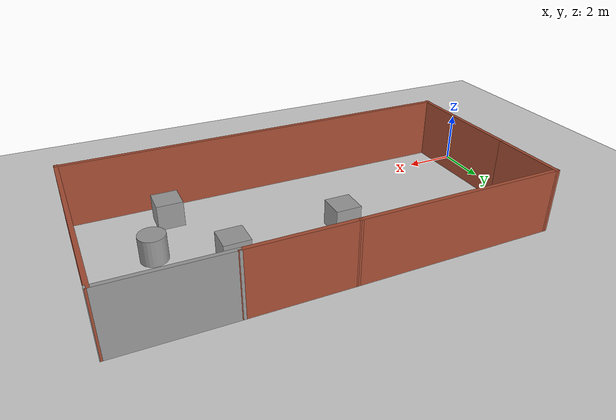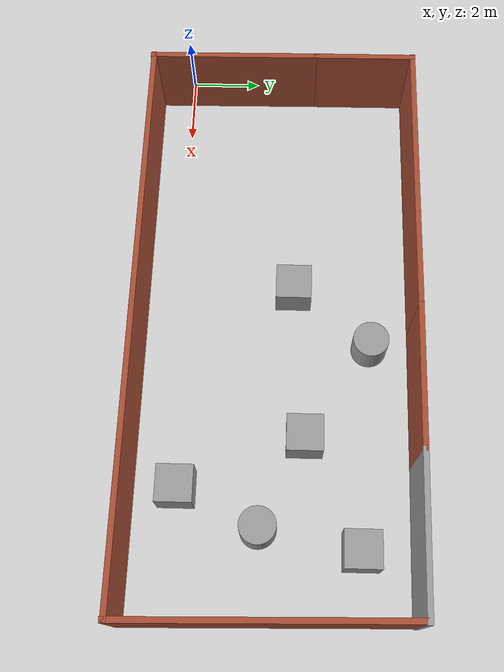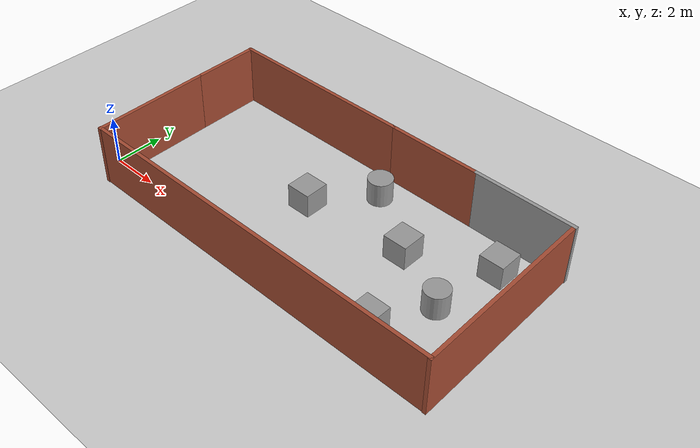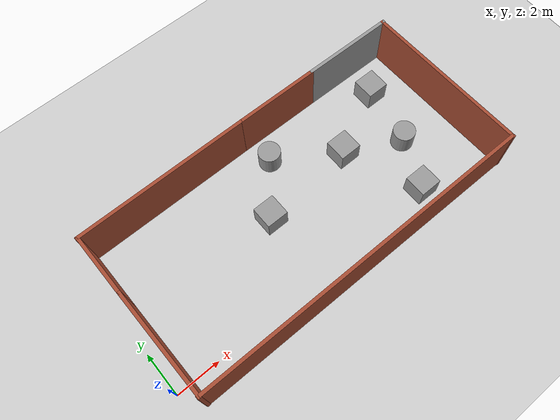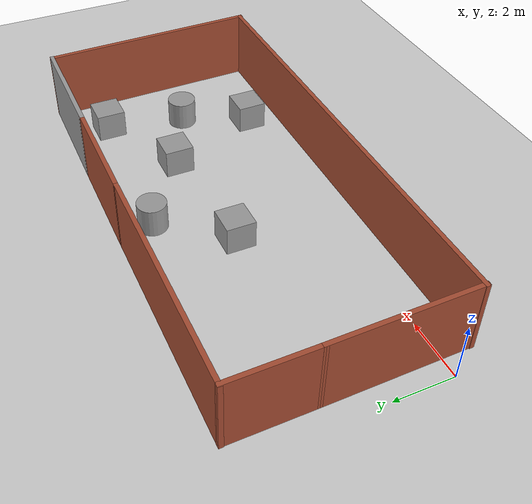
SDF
<sdf version="1.7">
 <world name="default">
  <light name="sun" type="directional">
   <pose>0 0 10 0 -0 0</pose>
   <diffuse>0.8 0.8 0.8 1</diffuse>
   <specular>0.2 0.2 0.2 1</specular>
   <attenuation>
    <range>1000</range>
    <constant>0.9</constant>
    <linear>0.01</linear>
    <quadratic>0.001</quadratic>
   </attenuation>
   <direction>-0.5 0.1 -0.9</direction>
   <spot><inner_angle>0</inner_angle><outer_angle>0</outer_angle><falloff>0</falloff></spot>
  </light>
  <model name="ground_plane">
   <static>1</static>
   <link name="link">
    <collision name="collision">
     <geometry><plane><normal>0 0 1</normal><size>100 100</size></plane></geometry>
     <surface><friction><ode><mu>100</mu><mu2>50</mu2></ode></friction></surface>
    </collision>
    <visual name="visual">
     <cast_shadows>0</cast_shadows>
     <geometry><plane><normal>0 0 1</normal><size>100 100</size></plane></geometry>
     <material>
      <script><uri>file://media/materials/scripts/gazebo.material</uri><name>Gazebo/Grey</name></script>
     </material>
    </visual>
   </link>
  </model>
  <gravity>0 0 -9.8</gravity>
  <magnetic_field>6e-06 2.3e-05 -4.2e-05</magnetic_field>
  <atmosphere type="adiabatic"/>
  <physics type="ode">
   <max_step_size>0.001</max_step_size>
   <real_time_factor>1</real_time_factor>
   <real_time_update_rate>1000</real_time_update_rate>
  </physics>
  <scene><ambient>0.4 0.4 0.4 1</ambient><background>0.7 0.7 0.7 1</background><shadows>1</shadows></scene>
  <audio><device>default</device></audio>
  <spherical_coordinates>
   <surface_model>EARTH_WGS84</surface_model>
   <latitude_deg>0</latitude_deg>
   <longitude_deg>0</longitude_deg>
   <elevation>0</elevation>
   <heading_deg>0</heading_deg>
  </spherical_coordinates>
  <model name="unit_box">
   <pose>11.637 3.65047 0.499995 -1e-05 0 0</pose>
   <link name="link">
    <inertial>
     <mass>1</mass>
     <inertia>
      <ixx>0.166667</ixx>
      <ixy>0</ixy>
      <ixz>0</ixz>
      <iyy>0.166667</iyy>
      <iyz>0</iyz>
      <izz>0.166667</izz>
     </inertia>
    </inertial>
    <collision name="collision"><geometry><box><size>1 1 1</size></box></geometry></collision>
    <visual name="visual">
     <geometry><box><size>1 1 1</size></box></geometry>
     <material>
      <script><name>Gazebo/Grey</name><uri>file://media/materials/scripts/gazebo.material</uri></script>
     </material>
    </visual>
   </link>
  </model>
  <model name="unit_box_clone">
   <pose>13.073 0.233481 0.499995 0 1e-05 0</pose>
   <link name="link">
    <inertial>
     <mass>1</mass>
     <inertia>
      <ixx>0.166667</ixx>
      <ixy>0</ixy>
      <ixz>0</ixz>
      <iyy>0.166667</iyy>
      <iyz>0</iyz>
      <izz>0.166667</izz>
     </inertia>
    </inertial>
    <collision name="collision"><geometry><box><size>1 1 1</size></box></geometry></collision>
    <visual name="visual">
     <geometry><box><size>1 1 1</size></box></geometry>
     <material>
      <script><name>Gazebo/Grey</name><uri>file://media/materials/scripts/gazebo.material</uri></script>
     </material>
    </visual>
   </link>
  </model>
  <model name="unit_box_clone_0">
   <pose>7.27341 3.27563 0.499995 0 1e-05 0</pose>
   <link name="link">
    <inertial>
     <mass>1</mass>
     <inertia>
      <ixx>0.166667</ixx>
      <ixy>0</ixy>
      <ixz>0</ixz>
      <iyy>0.166667</iyy>
      <iyz>0</iyz>
      <izz>0.166667</izz>
     </inertia>
    </inertial>
    <collision name="collision"><geometry><box><size>1 1 1</size></box></geometry></collision>
    <visual name="visual">
     <geometry><box><size>1 1 1</size></box></geometry>
     <material>
      <script><name>Gazebo/Grey</name><uri>file://media/materials/scripts/gazebo.material</uri></script>
     </material>
    </visual>
   </link>
  </model>
  <model name="unit_cylinder">
   <pose>8.96456 5.44749 0.499993 -3e-06 -3e-06 0</pose>
   <link name="link">
    <inertial>
     <mass>1</mass>
     <inertia><ixx>0.145833</ixx><ixy>0</ixy><ixz>0</ixz><iyy>0.145833</iyy><iyz>0</iyz><izz>0.125</izz></inertia>
    </inertial>
    <collision name="collision">
     <geometry><cylinder><radius>0.5</radius><length>1</length></cylinder></geometry>
    </collision>
    <visual name="visual">
     <geometry><cylinder><radius>0.5</radius><length>1</length></cylinder></geometry>
     <material>
      <script><name>Gazebo/Grey</name><uri>file://media/materials/scripts/gazebo.material</uri></script>
     </material>
    </visual>
   </link>
  </model>
  <model name="test_model">
   <pose>8.60024 2.79088 0 0 -0 0</pose>
   <link name="Wall_2">
    <collision name="Wall_2_Collision">
     <geometry><box><size>4.97731 0.15 2.5</size></box></geometry>
     <pose>0 0 1.25 0 -0 0</pose>
    </collision>
    <visual name="Wall_2_Visual">
     <pose>0 0 1.25 0 -0 0</pose>
     <geometry><box><size>4.97731 0.15 2.5</size></box></geometry>
     <material>
      <script><uri>file://media/materials/scripts/gazebo.material</uri><name>Gazebo/Bricks</name></script>
      <ambient>1 1 1 1</ambient>
     </material>
     <meta><layer>0</layer></meta>
    </visual>
    <pose>-7.89686 -1.38431 0 0 -0 -1.5583</pose>
   </link>
   <link name="Wall_3">
    <collision name="Wall_3_Collision">
     <geometry><box><size>15.9825 0.15 2.5</size></box></geometry>
     <pose>0 0 1.25 0 -0 0</pose>
    </collision>
    <visual name="Wall_3_Visual">
     <pose>0 0 1.25 0 -0 0</pose>
     <geometry><box><size>15.9825 0.15 2.5</size></box></geometry>
     <material>
      <script><uri>file://media/materials/scripts/gazebo.material</uri><name>Gazebo/Bricks</name></script>
      <ambient>1 1 1 1</ambient>
     </material>
     <meta><layer>0</layer></meta>
    </visual>
    <pose>0.029437 -3.79777 0 0 -0 -0.002541</pose>
   </link>
   <link name="Wall_5">
    <collision name="Wall_5_Collision">
     <geometry><box><size>2.95985 0.15 2.5</size></box></geometry>
     <pose>0 0 1.25 0 -0 0</pose>
    </collision>
    <visual name="Wall_5_Visual">
     <pose>0 0 1.25 0 -0 0</pose>
     <geometry><box><size>2.95985 0.15 2.5</size></box></geometry>
     <material>
      <script><uri>file://media/materials/scripts/gazebo.material</uri><name>Gazebo/Bricks</name></script>
      <ambient>1 1 1 1</ambient>
     </material>
     <meta><layer>0</layer></meta>
    </visual>
    <pose>-7.93709 2.43404 0 0 -0 1.57795</pose>
   </link>
   <link name="Wall_6">
    <collision name="Wall_6_Collision">
     <geometry><box><size>8 0.15 2.5</size></box></geometry>
     <pose>0 0 1.25 0 -0 0</pose>
    </collision>
    <visual name="Wall_6_Visual">
     <pose>0 0 1.25 0 -0 0</pose>
     <geometry><box><size>8 0.15 2.5</size></box></geometry>
     <material>
      <script><uri>file://media/materials/scripts/gazebo.material</uri><name>Gazebo/Bricks</name></script>
      <ambient>1 1 1 1</ambient>
     </material>
     <meta><layer>0</layer></meta>
    </visual>
    <pose>-4.04226 3.83893 0 0 -0 0</pose>
   </link>
   <link name="Wall_7">
    <collision name="Wall_7_Collision">
     <geometry><box><size>3.97994 0.15 2.5</size></box></geometry>
     <pose>0 0 1.25 0 -0 0</pose>
    </collision>
    <visual name="Wall_7_Visual">
     <pose>0 0 1.25 0 -0 0</pose>
     <geometry><box><size>3.97994 0.15 2.5</size></box></geometry>
     <material>
      <script><uri>file://media/materials/scripts/gazebo.material</uri><name>Gazebo/Bricks</name></script>
      <ambient>1 1 1 1</ambient>
     </material>
     <meta><layer>0</layer></meta>
    </visual>
    <pose>1.8178 3.82887 0 0 -0 -0.005252</pose>
   </link>
   <link name="Wall_8">
    <collision name="Wall_8_Collision">
     <geometry><box><size>4.23269 0.15 2.5</size></box></geometry>
     <pose>0 0 1.25 0 -0 0</pose>
    </collision>
    <visual name="Wall_8_Visual">
     <pose>0 0 1.25 0 -0 0</pose>
     <geometry><box><size>4.23269 0.15 2.5</size></box></geometry>
     <material>
      <script><uri>file://media/materials/scripts/gazebo.material</uri><name>Gazebo/Grey</name></script>
      <ambient>1 1 1 1</ambient>
     </material>
     <meta><layer>0</layer></meta>
    </visual>
    <pose>5.7941 3.7987 0 0 -0 -0.009853</pose>
   </link>
   <link name="Wall_9">
    <collision name="Wall_9_Collision">
     <geometry><box><size>7.76807 0.15 2.5</size></box></geometry>
     <pose>0 0 1.25 0 -0 0</pose>
    </collision>
    <visual name="Wall_9_Visual">
     <pose>0 0 1.25 0 -0 0</pose>
     <geometry><box><size>7.76807 0.15 2.5</size></box></geometry>
     <material>
      <script><uri>file://media/materials/scripts/gazebo.material</uri><name>Gazebo/Bricks</name></script>
      <ambient>1 1 1 1</ambient>
     </material>
     <meta><layer>0</layer></meta>
    </visual>
    <pose>7.89051 -0.029704 0 0 -0 -1.55103</pose>
   </link>
   <static>1</static>
  </model>
  <model name="unit_box_clone_1">
   <pose>14.6341 5.177 0.499995 -1e-05 0 0</pose>
   <link name="link">
    <inertial>
     <mass>1</mass>
     <inertia>
      <ixx>0.166667</ixx>
      <ixy>0</ixy>
      <ixz>0</ixz>
      <iyy>0.166667</iyy>
      <iyz>0</iyz>
      <izz>0.166667</izz>
     </inertia>
    </inertial>
    <collision name="collision"><geometry><box><size>1 1 1</size></box></geometry></collision>
    <visual name="visual">
     <geometry><box><size>1 1 1</size></box></geometry>
     <material>
      <script><name>Gazebo/Grey</name><uri>file://media/materials/scripts/gazebo.material</uri></script>
     </material>
    </visual>
   </link>
  </model>
  <model name="unit_cylinder_clone">
   <pose>14.1057 2.45083 0.499993 -3e-06 -4e-06 -0</pose>
   <link name="link">
    <inertial>
     <mass>1</mass>
     <inertia><ixx>0.145833</ixx><ixy>0</ixy><ixz>0</ixz><iyy>0.145833</iyy><iyz>0</iyz><izz>0.125</izz></inertia>
    </inertial>
    <collision name="collision">
     <geometry><cylinder><radius>0.5</radius><length>1</length></cylinder></geometry>
    </collision>
    <visual name="visual">
     <geometry><cylinder><radius>0.5</radius><length>1</length></cylinder></geometry>
     <material>
      <script><name>Gazebo/Grey</name><uri>file://media/materials/scripts/gazebo.material</uri></script>
     </material>
    </visual>
   </link>
  </model>
 </world>
</sdf>
